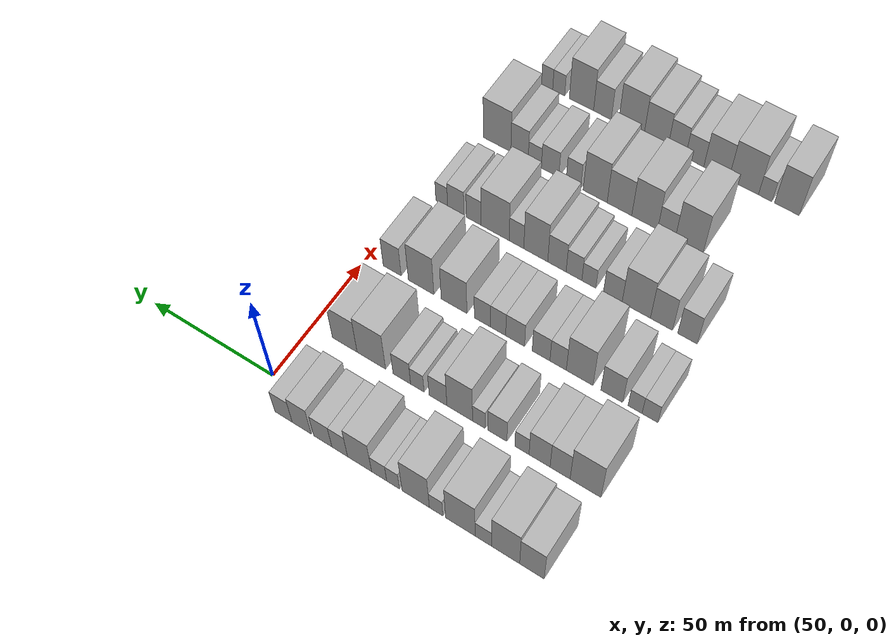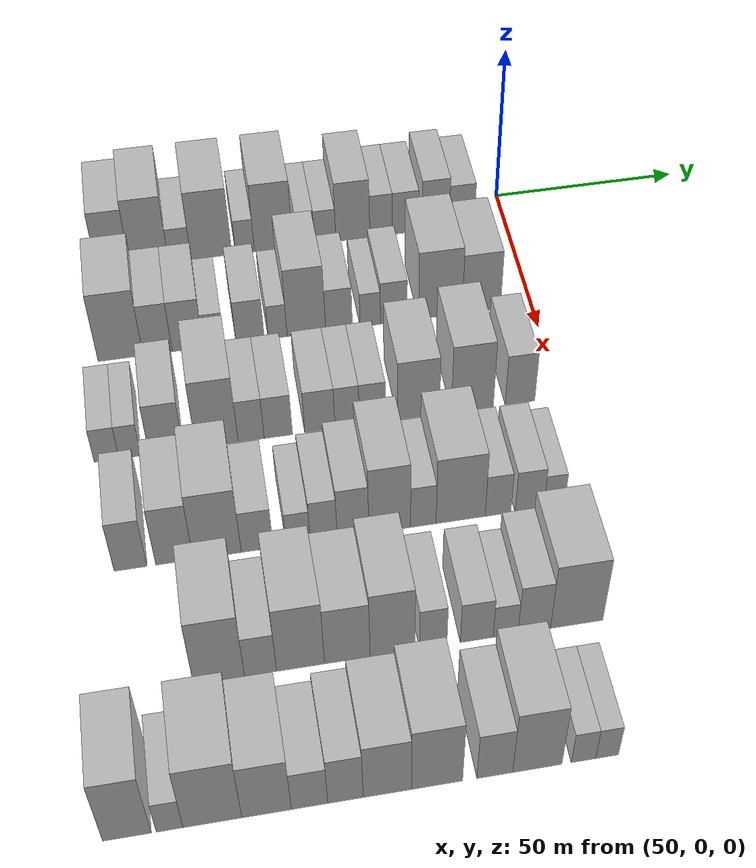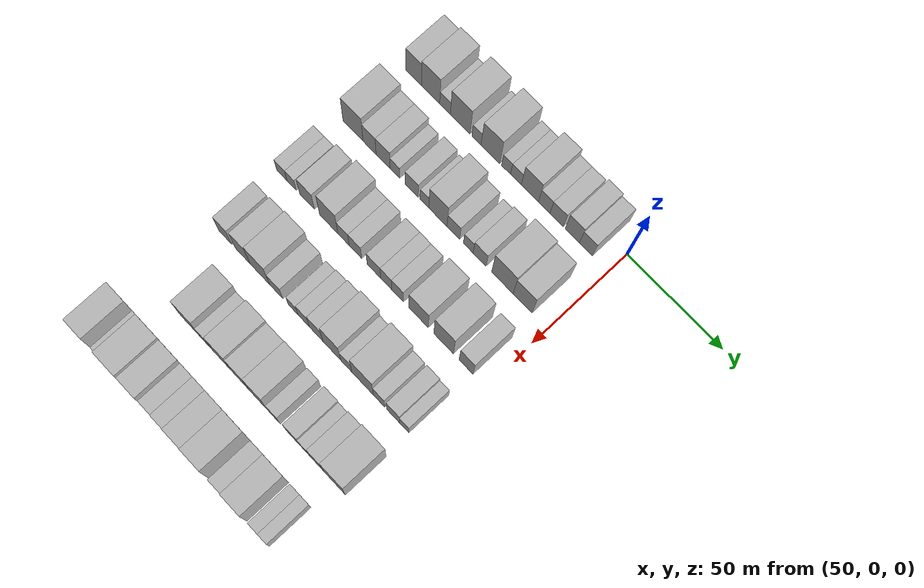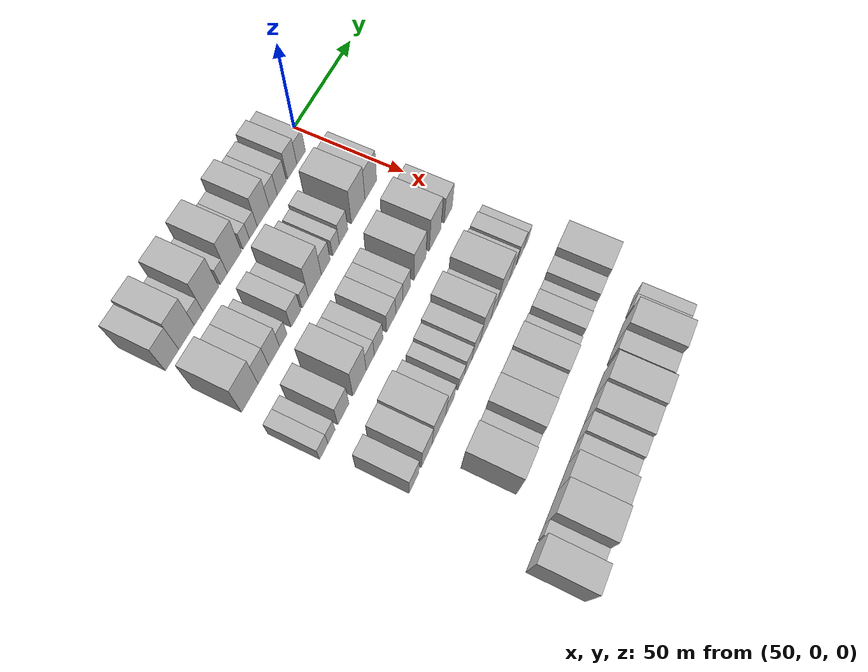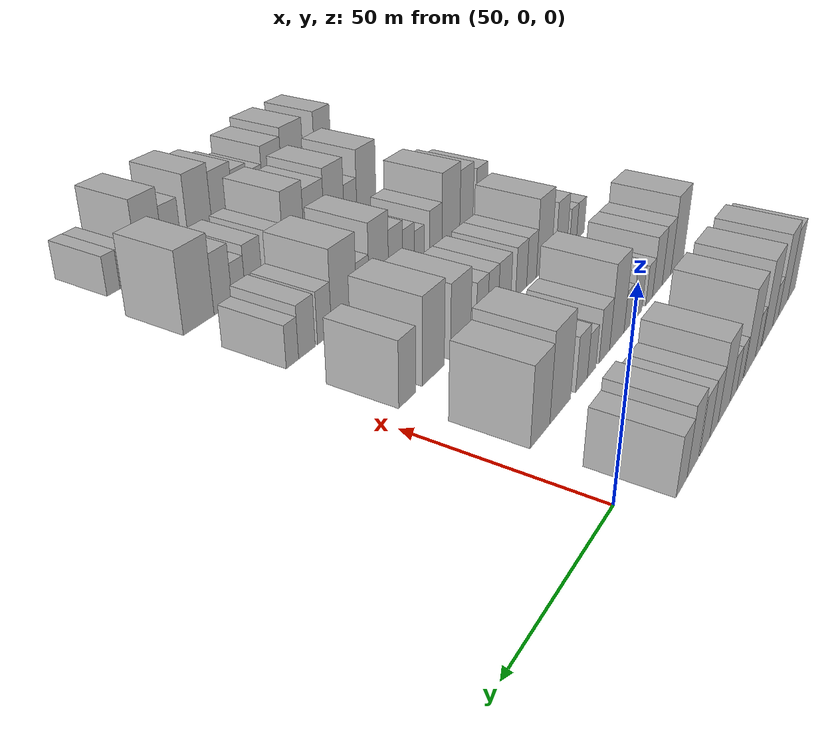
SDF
<sdf version="1.6">
 <world name="default">
  <model name="building_49">
   <static>1</static>
   <pose>50.0000 -106.6758 0 0.000000 0.000000 0.000000</pose>
   <link name="link">
    <pose>0 0 10.50 0 0 0</pose>
    <collision name="collision"><geometry><box><size>20.0000 8.8362 21.0000</size></box></geometry></collision>
    <visual name="visual">
     <cast_shadows>0</cast_shadows>
     <geometry><box><size>20.0000 8.8362 21.0000</size></box></geometry>
     <material>
      <script>
       <uri>model://HANNAS_wall/materials/scripts</uri>
       <uri>model://HANNAS_wall/materials/textures</uri>
       <name>vrc/HANNAS_wall</name>
      </script>
     </material>
    </visual>
   </link>
  </model>
  <model name="building_50">
   <static>1</static>
   <pose>50.0000 -97.1224 0 0.000000 0.000000 0.000000</pose>
   <link name="link">
    <pose>0 0 12.00 0 0 0</pose>
    <collision name="collision"><geometry><box><size>20.0000 10.2706 24.0000</size></box></geometry></collision>
    <visual name="visual">
     <cast_shadows>0</cast_shadows>
     <geometry><box><size>20.0000 10.2706 24.0000</size></box></geometry>
     <material>
      <script>
       <uri>model://HANNAS_wall/materials/scripts</uri>
       <uri>model://HANNAS_wall/materials/textures</uri>
       <name>vrc/HANNAS_wall</name>
      </script>
     </material>
    </visual>
   </link>
  </model>
  <model name="building_51">
   <static>1</static>
   <pose>50.0000 -88.9903 0 0.000000 0.000000 0.000000</pose>
   <link name="link">
    <pose>0 0 6.00 0 0 0</pose>
    <collision name="collision"><geometry><box><size>20.0000 5.9936 12.0000</size></box></geometry></collision>
    <visual name="visual">
     <cast_shadows>0</cast_shadows>
     <geometry><box><size>20.0000 5.9936 12.0000</size></box></geometry>
     <material>
      <script>
       <uri>model://HANNAS_wall/materials/scripts</uri>
       <uri>model://HANNAS_wall/materials/textures</uri>
       <name>vrc/HANNAS_wall</name>
      </script>
     </material>
    </visual>
   </link>
  </model>
  <model name="building_52">
   <static>1</static>
   <pose>50.0000 -80.4888 0 0.000000 0.000000 0.000000</pose>
   <link name="link">
    <pose>0 0 12.00 0 0 0</pose>
    <collision name="collision"><geometry><box><size>20.0000 11.0094 24.0000</size></box></geometry></collision>
    <visual name="visual">
     <cast_shadows>0</cast_shadows>
     <geometry><box><size>20.0000 11.0094 24.0000</size></box></geometry>
     <material>
      <script>
       <uri>model://HANNAS_wall/materials/scripts</uri>
       <uri>model://HANNAS_wall/materials/textures</uri>
       <name>vrc/HANNAS_wall</name>
      </script>
     </material>
    </visual>
   </link>
  </model>
  <model name="building_53">
   <static>1</static>
   <pose>50.0000 -71.4390 0 0.000000 0.000000 0.000000</pose>
   <link name="link">
    <pose>0 0 6.00 0 0 0</pose>
    <collision name="collision"><geometry><box><size>20.0000 5.0902 12.0000</size></box></geometry></collision>
    <visual name="visual">
     <cast_shadows>0</cast_shadows>
     <geometry><box><size>20.0000 5.0902 12.0000</size></box></geometry>
     <material>
      <script>
       <uri>model://HANNAS_wall/materials/scripts</uri>
       <uri>model://HANNAS_wall/materials/textures</uri>
       <name>vrc/HANNAS_wall</name>
      </script>
     </material>
    </visual>
   </link>
  </model>
  <model name="building_54">
   <static>1</static>
   <pose>50.0000 -63.7109 0 0.000000 0.000000 0.000000</pose>
   <link name="link">
    <pose>0 0 12.00 0 0 0</pose>
    <collision name="collision"><geometry><box><size>20.0000 10.3659 24.0000</size></box></geometry></collision>
    <visual name="visual">
     <cast_shadows>0</cast_shadows>
     <geometry><box><size>20.0000 10.3659 24.0000</size></box></geometry>
     <material>
      <script>
       <uri>model://HANNAS_wall/materials/scripts</uri>
       <uri>model://HANNAS_wall/materials/textures</uri>
       <name>vrc/HANNAS_wall</name>
      </script>
     </material>
    </visual>
   </link>
  </model>
  <model name="building_55">
   <static>1</static>
   <pose>50.0000 -55.0827 0 0.000000 0.000000 0.000000</pose>
   <link name="link">
    <pose>0 0 6.00 0 0 0</pose>
    <collision name="collision"><geometry><box><size>20.0000 4.8906 12.0000</size></box></geometry></collision>
    <visual name="visual">
     <cast_shadows>0</cast_shadows>
     <geometry><box><size>20.0000 4.8906 12.0000</size></box></geometry>
     <material>
      <script>
       <uri>model://HANNAS_wall/materials/scripts</uri>
       <uri>model://HANNAS_wall/materials/textures</uri>
       <name>vrc/HANNAS_wall</name>
      </script>
     </material>
    </visual>
   </link>
  </model>
  <model name="building_56">
   <static>1</static>
   <pose>50.0000 -49.7061 0 0.000000 0.000000 0.000000</pose>
   <link name="link">
    <pose>0 0 6.00 0 0 0</pose>
    <collision name="collision"><geometry><box><size>20.0000 5.8625 12.0000</size></box></geometry></collision>
    <visual name="visual">
     <cast_shadows>0</cast_shadows>
     <geometry><box><size>20.0000 5.8625 12.0000</size></box></geometry>
     <material>
      <script>
       <uri>model://HANNAS_wall/materials/scripts</uri>
       <uri>model://HANNAS_wall/materials/textures</uri>
       <name>vrc/HANNAS_wall</name>
      </script>
     </material>
    </visual>
   </link>
  </model>
  <model name="building_57">
   <static>1</static>
   <pose>50.0000 -42.0922 0 0.000000 0.000000 0.000000</pose>
   <link name="link">
    <pose>0 0 10.50 0 0 0</pose>
    <collision name="collision"><geometry><box><size>20.0000 9.3654 21.0000</size></box></geometry></collision>
    <visual name="visual">
     <cast_shadows>0</cast_shadows>
     <geometry><box><size>20.0000 9.3654 21.0000</size></box></geometry>
     <material>
      <script>
       <uri>model://HANNAS_wall/materials/scripts</uri>
       <uri>model://HANNAS_wall/materials/textures</uri>
       <name>vrc/HANNAS_wall</name>
      </script>
     </material>
    </visual>
   </link>
  </model>
  <model name="building_58">
   <static>1</static>
   <pose>50.0000 -34.3028 0 0.000000 0.000000 0.000000</pose>
   <link name="link">
    <pose>0 0 7.50 0 0 0</pose>
    <collision name="collision"><geometry><box><size>20.0000 6.2133 15.0000</size></box></geometry></collision>
    <visual name="visual">
     <cast_shadows>0</cast_shadows>
     <geometry><box><size>20.0000 6.2133 15.0000</size></box></geometry>
     <material>
      <script>
       <uri>model://HANNAS_wall/materials/scripts</uri>
       <uri>model://HANNAS_wall/materials/textures</uri>
       <name>vrc/HANNAS_wall</name>
      </script>
     </material>
    </visual>
   </link>
  </model>
  <model name="building_59">
   <static>1</static>
   <pose>50.0000 -27.5855 0 0.000000 0.000000 0.000000</pose>
   <link name="link">
    <pose>0 0 7.50 0 0 0</pose>
    <collision name="collision"><geometry><box><size>20.0000 7.2214 15.0000</size></box></geometry></collision>
    <visual name="visual">
     <cast_shadows>0</cast_shadows>
     <geometry><box><size>20.0000 7.2214 15.0000</size></box></geometry>
     <material>
      <script>
       <uri>model://HANNAS_wall/materials/scripts</uri>
       <uri>model://HANNAS_wall/materials/textures</uri>
       <name>vrc/HANNAS_wall</name>
      </script>
     </material>
    </visual>
   </link>
  </model>
  <model name="building_60">
   <static>1</static>
   <pose>50.0000 -19.1805 0 0.000000 0.000000 0.000000</pose>
   <link name="link">
    <pose>0 0 9.00 0 0 0</pose>
    <collision name="collision"><geometry><box><size>20.0000 7.5884 18.0000</size></box></geometry></collision>
    <visual name="visual">
     <cast_shadows>0</cast_shadows>
     <geometry><box><size>20.0000 7.5884 18.0000</size></box></geometry>
     <material>
      <script>
       <uri>model://HANNAS_wall/materials/scripts</uri>
       <uri>model://HANNAS_wall/materials/textures</uri>
       <name>vrc/HANNAS_wall</name>
      </script>
     </material>
    </visual>
   </link>
  </model>
  <model name="building_61">
   <static>1</static>
   <pose>50.0000 -11.8799 0 0.000000 0.000000 0.000000</pose>
   <link name="link">
    <pose>0 0 7.50 0 0 0</pose>
    <collision name="collision"><geometry><box><size>20.0000 7.0128 15.0000</size></box></geometry></collision>
    <visual name="visual">
     <cast_shadows>0</cast_shadows>
     <geometry><box><size>20.0000 7.0128 15.0000</size></box></geometry>
     <material>
      <script>
       <uri>model://HANNAS_wall/materials/scripts</uri>
       <uri>model://HANNAS_wall/materials/textures</uri>
       <name>vrc/HANNAS_wall</name>
      </script>
     </material>
    </visual>
   </link>
  </model>
  <model name="building_170">
   <static>1</static>
   <pose>82.0000 -106.6949 0 0.000000 0.000000 0.000000</pose>
   <link name="link">
    <pose>0 0 12.00 0 0 0</pose>
    <collision name="collision"><geometry><box><size>20.0000 11.3223 24.0000</size></box></geometry></collision>
    <visual name="visual">
     <cast_shadows>0</cast_shadows>
     <geometry><box><size>20.0000 11.3223 24.0000</size></box></geometry>
     <material>
      <script>
       <uri>model://HANNAS_wall/materials/scripts</uri>
       <uri>model://HANNAS_wall/materials/textures</uri>
       <name>vrc/HANNAS_wall</name>
      </script>
     </material>
    </visual>
   </link>
  </model>
  <model name="building_171">
   <static>1</static>
   <pose>82.0000 -97.3209 0 0.000000 0.000000 0.000000</pose>
   <link name="link">
    <pose>0 0 9.00 0 0 0</pose>
    <collision name="collision"><geometry><box><size>20.0000 7.4257 18.0000</size></box></geometry></collision>
    <visual name="visual">
     <cast_shadows>0</cast_shadows>
     <geometry><box><size>20.0000 7.4257 18.0000</size></box></geometry>
     <material>
      <script>
       <uri>model://HANNAS_wall/materials/scripts</uri>
       <uri>model://HANNAS_wall/materials/textures</uri>
       <name>vrc/HANNAS_wall</name>
      </script>
     </material>
    </visual>
   </link>
  </model>
  <model name="building_172">
   <static>1</static>
   <pose>82.0000 -89.6643 0 0.000000 0.000000 0.000000</pose>
   <link name="link">
    <pose>0 0 9.00 0 0 0</pose>
    <collision name="collision"><geometry><box><size>20.0000 7.8875 18.0000</size></box></geometry></collision>
    <visual name="visual">
     <cast_shadows>0</cast_shadows>
     <geometry><box><size>20.0000 7.8875 18.0000</size></box></geometry>
     <material>
      <script>
       <uri>model://HANNAS_wall/materials/scripts</uri>
       <uri>model://HANNAS_wall/materials/textures</uri>
       <name>vrc/HANNAS_wall</name>
      </script>
     </material>
    </visual>
   </link>
  </model>
  <model name="building_173">
   <static>1</static>
   <pose>82.0000 -83.0372 0 0.000000 0.000000 0.000000</pose>
   <link name="link">
    <pose>0 0 6.00 0 0 0</pose>
    <collision name="collision"><geometry><box><size>20.0000 5.3668 12.0000</size></box></geometry></collision>
    <visual name="visual">
     <cast_shadows>0</cast_shadows>
     <geometry><box><size>20.0000 5.3668 12.0000</size></box></geometry>
     <material>
      <script>
       <uri>model://HANNAS_wall/materials/scripts</uri>
       <uri>model://HANNAS_wall/materials/textures</uri>
       <name>vrc/HANNAS_wall</name>
      </script>
     </material>
    </visual>
   </link>
  </model>
  <model name="building_174">
   <static>1</static>
   <pose>82.0000 -73.7047 0 0.000000 0.000000 0.000000</pose>
   <link name="link">
    <pose>0 0 7.50 0 0 0</pose>
    <collision name="collision"><geometry><box><size>20.0000 7.2982 15.0000</size></box></geometry></collision>
    <visual name="visual">
     <cast_shadows>0</cast_shadows>
     <geometry><box><size>20.0000 7.2982 15.0000</size></box></geometry>
     <material>
      <script>
       <uri>model://HANNAS_wall/materials/scripts</uri>
       <uri>model://HANNAS_wall/materials/textures</uri>
       <name>vrc/HANNAS_wall</name>
      </script>
     </material>
    </visual>
   </link>
  </model>
  <model name="building_175">
   <static>1</static>
   <pose>82.0000 -66.6245 0 0.000000 0.000000 0.000000</pose>
   <link name="link">
    <pose>0 0 6.00 0 0 0</pose>
    <collision name="collision"><geometry><box><size>20.0000 4.8620 12.0000</size></box></geometry></collision>
    <visual name="visual">
     <cast_shadows>0</cast_shadows>
     <geometry><box><size>20.0000 4.8620 12.0000</size></box></geometry>
     <material>
      <script>
       <uri>model://HANNAS_wall/materials/scripts</uri>
       <uri>model://HANNAS_wall/materials/textures</uri>
       <name>vrc/HANNAS_wall</name>
      </script>
     </material>
    </visual>
   </link>
  </model>
  <model name="building_176">
   <static>1</static>
   <pose>82.0000 -59.1993 0 0.000000 0.000000 0.000000</pose>
   <link name="link">
    <pose>0 0 12.00 0 0 0</pose>
    <collision name="collision"><geometry><box><size>20.0000 9.9884 24.0000</size></box></geometry></collision>
    <visual name="visual">
     <cast_shadows>0</cast_shadows>
     <geometry><box><size>20.0000 9.9884 24.0000</size></box></geometry>
     <material>
      <script>
       <uri>model://HANNAS_wall/materials/scripts</uri>
       <uri>model://HANNAS_wall/materials/textures</uri>
       <name>vrc/HANNAS_wall</name>
      </script>
     </material>
    </visual>
   </link>
  </model>
  <model name="building_177">
   <static>1</static>
   <pose>82.0000 -50.7267 0 0.000000 0.000000 0.000000</pose>
   <link name="link">
    <pose>0 0 7.50 0 0 0</pose>
    <collision name="collision"><geometry><box><size>20.0000 6.9568 15.0000</size></box></geometry></collision>
    <visual name="visual">
     <cast_shadows>0</cast_shadows>
     <geometry><box><size>20.0000 6.9568 15.0000</size></box></geometry>
     <material>
      <script>
       <uri>model://HANNAS_wall/materials/scripts</uri>
       <uri>model://HANNAS_wall/materials/textures</uri>
       <name>vrc/HANNAS_wall</name>
      </script>
     </material>
    </visual>
   </link>
  </model>
  <model name="building_178">
   <static>1</static>
   <pose>82.0000 -42.5700 0 0.000000 0.000000 0.000000</pose>
   <link name="link">
    <pose>0 0 6.00 0 0 0</pose>
    <collision name="collision"><geometry><box><size>20.0000 5.3566 12.0000</size></box></geometry></collision>
    <visual name="visual">
     <cast_shadows>0</cast_shadows>
     <geometry><box><size>20.0000 5.3566 12.0000</size></box></geometry>
     <material>
      <script>
       <uri>model://HANNAS_wall/materials/scripts</uri>
       <uri>model://HANNAS_wall/materials/textures</uri>
       <name>vrc/HANNAS_wall</name>
      </script>
     </material>
    </visual>
   </link>
  </model>
  <model name="building_179">
   <static>1</static>
   <pose>82.0000 -36.3921 0 0.000000 0.000000 0.000000</pose>
   <link name="link">
    <pose>0 0 7.50 0 0 0</pose>
    <collision name="collision"><geometry><box><size>20.0000 6.9991 15.0000</size></box></geometry></collision>
    <visual name="visual">
     <cast_shadows>0</cast_shadows>
     <geometry><box><size>20.0000 6.9991 15.0000</size></box></geometry>
     <material>
      <script>
       <uri>model://HANNAS_wall/materials/scripts</uri>
       <uri>model://HANNAS_wall/materials/textures</uri>
       <name>vrc/HANNAS_wall</name>
      </script>
     </material>
    </visual>
   </link>
  </model>
  <model name="building_180">
   <static>1</static>
   <pose>82.0000 -24.1122 0 0.000000 0.000000 0.000000</pose>
   <link name="link">
    <pose>0 0 12.00 0 0 0</pose>
    <collision name="collision"><geometry><box><size>20.0000 11.5607 24.0000</size></box></geometry></collision>
    <visual name="visual">
     <cast_shadows>0</cast_shadows>
     <geometry><box><size>20.0000 11.5607 24.0000</size></box></geometry>
     <material>
      <script>
       <uri>model://HANNAS_wall/materials/scripts</uri>
       <uri>model://HANNAS_wall/materials/textures</uri>
       <name>vrc/HANNAS_wall</name>
      </script>
     </material>
    </visual>
   </link>
  </model>
  <model name="building_181">
   <static>1</static>
   <pose>82.0000 -13.2742 0 0.000000 0.000000 0.000000</pose>
   <link name="link">
    <pose>0 0 10.50 0 0 0</pose>
    <collision name="collision"><geometry><box><size>20.0000 10.1153 21.0000</size></box></geometry></collision>
    <visual name="visual">
     <cast_shadows>0</cast_shadows>
     <geometry><box><size>20.0000 10.1153 21.0000</size></box></geometry>
     <material>
      <script>
       <uri>model://HANNAS_wall/materials/scripts</uri>
       <uri>model://HANNAS_wall/materials/textures</uri>
       <name>vrc/HANNAS_wall</name>
      </script>
     </material>
    </visual>
   </link>
  </model>
  <model name="building_294">
   <static>1</static>
   <pose>114.0000 -111.9720 0 0.000000 0.000000 0.000000</pose>
   <link name="link">
    <pose>0 0 6.00 0 0 0</pose>
    <collision name="collision"><geometry><box><size>20.0000 5.9072 12.0000</size></box></geometry></collision>
    <visual name="visual">
     <cast_shadows>0</cast_shadows>
     <geometry><box><size>20.0000 5.9072 12.0000</size></box></geometry>
     <material>
      <script>
       <uri>model://HANNAS_wall/materials/scripts</uri>
       <uri>model://HANNAS_wall/materials/textures</uri>
       <name>vrc/HANNAS_wall</name>
      </script>
     </material>
    </visual>
   </link>
  </model>
  <model name="building_295">
   <static>1</static>
   <pose>114.0000 -106.4032 0 0.000000 0.000000 0.000000</pose>
   <link name="link">
    <pose>0 0 6.00 0 0 0</pose>
    <collision name="collision"><geometry><box><size>20.0000 5.2304 12.0000</size></box></geometry></collision>
    <visual name="visual">
     <cast_shadows>0</cast_shadows>
     <geometry><box><size>20.0000 5.2304 12.0000</size></box></geometry>
     <material>
      <script>
       <uri>model://HANNAS_wall/materials/scripts</uri>
       <uri>model://HANNAS_wall/materials/textures</uri>
       <name>vrc/HANNAS_wall</name>
      </script>
     </material>
    </visual>
   </link>
  </model>
  <model name="building_296">
   <static>1</static>
   <pose>114.0000 -97.6557 0 0.000000 0.000000 0.000000</pose>
   <link name="link">
    <pose>0 0 9.00 0 0 0</pose>
    <collision name="collision"><geometry><box><size>20.0000 8.2647 18.0000</size></box></geometry></collision>
    <visual name="visual">
     <cast_shadows>0</cast_shadows>
     <geometry><box><size>20.0000 8.2647 18.0000</size></box></geometry>
     <material>
      <script>
       <uri>model://HANNAS_wall/materials/scripts</uri>
       <uri>model://HANNAS_wall/materials/textures</uri>
       <name>vrc/HANNAS_wall</name>
      </script>
     </material>
    </visual>
   </link>
  </model>
  <model name="building_297">
   <static>1</static>
   <pose>114.0000 -85.3993 0 0.000000 0.000000 0.000000</pose>
   <link name="link">
    <pose>0 0 12.00 0 0 0</pose>
    <collision name="collision"><geometry><box><size>20.0000 10.2481 24.0000</size></box></geometry></collision>
    <visual name="visual">
     <cast_shadows>0</cast_shadows>
     <geometry><box><size>20.0000 10.2481 24.0000</size></box></geometry>
     <material>
      <script>
       <uri>model://HANNAS_wall/materials/scripts</uri>
       <uri>model://HANNAS_wall/materials/textures</uri>
       <name>vrc/HANNAS_wall</name>
      </script>
     </material>
    </visual>
   </link>
  </model>
  <model name="building_298">
   <static>1</static>
   <pose>114.0000 -77.1096 0 0.000000 0.000000 0.000000</pose>
   <link name="link">
    <pose>0 0 7.50 0 0 0</pose>
    <collision name="collision"><geometry><box><size>20.0000 6.3313 15.0000</size></box></geometry></collision>
    <visual name="visual">
     <cast_shadows>0</cast_shadows>
     <geometry><box><size>20.0000 6.3313 15.0000</size></box></geometry>
     <material>
      <script>
       <uri>model://HANNAS_wall/materials/scripts</uri>
       <uri>model://HANNAS_wall/materials/textures</uri>
       <name>vrc/HANNAS_wall</name>
      </script>
     </material>
    </visual>
   </link>
  </model>
  <model name="building_299">
   <static>1</static>
   <pose>114.0000 -70.4872 0 0.000000 0.000000 0.000000</pose>
   <link name="link">
    <pose>0 0 7.50 0 0 0</pose>
    <collision name="collision"><geometry><box><size>20.0000 6.9136 15.0000</size></box></geometry></collision>
    <visual name="visual">
     <cast_shadows>0</cast_shadows>
     <geometry><box><size>20.0000 6.9136 15.0000</size></box></geometry>
     <material>
      <script>
       <uri>model://HANNAS_wall/materials/scripts</uri>
       <uri>model://HANNAS_wall/materials/textures</uri>
       <name>vrc/HANNAS_wall</name>
      </script>
     </material>
    </visual>
   </link>
  </model>
  <model name="building_300">
   <static>1</static>
   <pose>114.0000 -60.3048 0 0.000000 0.000000 0.000000</pose>
   <link name="link">
    <pose>0 0 7.50 0 0 0</pose>
    <collision name="collision"><geometry><box><size>20.0000 7.4512 15.0000</size></box></geometry></collision>
    <visual name="visual">
     <cast_shadows>0</cast_shadows>
     <geometry><box><size>20.0000 7.4512 15.0000</size></box></geometry>
     <material>
      <script>
       <uri>model://HANNAS_wall/materials/scripts</uri>
       <uri>model://HANNAS_wall/materials/textures</uri>
       <name>vrc/HANNAS_wall</name>
      </script>
     </material>
    </visual>
   </link>
  </model>
  <model name="building_301">
   <static>1</static>
   <pose>114.0000 -53.5393 0 0.000000 0.000000 0.000000</pose>
   <link name="link">
    <pose>0 0 7.50 0 0 0</pose>
    <collision name="collision"><geometry><box><size>20.0000 6.0798 15.0000</size></box></geometry></collision>
    <visual name="visual">
     <cast_shadows>0</cast_shadows>
     <geometry><box><size>20.0000 6.0798 15.0000</size></box></geometry>
     <material>
      <script>
       <uri>model://HANNAS_wall/materials/scripts</uri>
       <uri>model://HANNAS_wall/materials/textures</uri>
       <name>vrc/HANNAS_wall</name>
      </script>
     </material>
    </visual>
   </link>
  </model>
  <model name="building_302">
   <static>1</static>
   <pose>114.0000 -47.2823 0 0.000000 0.000000 0.000000</pose>
   <link name="link">
    <pose>0 0 7.50 0 0 0</pose>
    <collision name="collision"><geometry><box><size>20.0000 6.4341 15.0000</size></box></geometry></collision>
    <visual name="visual">
     <cast_shadows>0</cast_shadows>
     <geometry><box><size>20.0000 6.4341 15.0000</size></box></geometry>
     <material>
      <script>
       <uri>model://HANNAS_wall/materials/scripts</uri>
       <uri>model://HANNAS_wall/materials/textures</uri>
       <name>vrc/HANNAS_wall</name>
      </script>
     </material>
    </visual>
   </link>
  </model>
  <model name="building_303">
   <static>1</static>
   <pose>114.0000 -35.8407 0 0.000000 0.000000 0.000000</pose>
   <link name="link">
    <pose>0 0 10.50 0 0 0</pose>
    <collision name="collision"><geometry><box><size>20.0000 10.4492 21.0000</size></box></geometry></collision>
    <visual name="visual">
     <cast_shadows>0</cast_shadows>
     <geometry><box><size>20.0000 10.4492 21.0000</size></box></geometry>
     <material>
      <script>
       <uri>model://HANNAS_wall/materials/scripts</uri>
       <uri>model://HANNAS_wall/materials/textures</uri>
       <name>vrc/HANNAS_wall</name>
      </script>
     </material>
    </visual>
   </link>
  </model>
  <model name="building_304">
   <static>1</static>
   <pose>114.0000 -22.3549 0 0.000000 0.000000 0.000000</pose>
   <link name="link">
    <pose>0 0 12.00 0 0 0</pose>
    <collision name="collision"><geometry><box><size>20.0000 10.5223 24.0000</size></box></geometry></collision>
    <visual name="visual">
     <cast_shadows>0</cast_shadows>
     <geometry><box><size>20.0000 10.5223 24.0000</size></box></geometry>
     <material>
      <script>
       <uri>model://HANNAS_wall/materials/scripts</uri>
       <uri>model://HANNAS_wall/materials/textures</uri>
       <name>vrc/HANNAS_wall</name>
      </script>
     </material>
    </visual>
   </link>
  </model>
  <model name="building_305">
   <static>1</static>
   <pose>114.0000 -10.3544 0 0.000000 0.000000 0.000000</pose>
   <link name="link">
    <pose>0 0 9.00 0 0 0</pose>
    <collision name="collision"><geometry><box><size>20.0000 7.4786 18.0000</size></box></geometry></collision>
    <visual name="visual">
     <cast_shadows>0</cast_shadows>
     <geometry><box><size>20.0000 7.4786 18.0000</size></box></geometry>
     <material>
      <script>
       <uri>model://HANNAS_wall/materials/scripts</uri>
       <uri>model://HANNAS_wall/materials/textures</uri>
       <name>vrc/HANNAS_wall</name>
      </script>
     </material>
    </visual>
   </link>
  </model>
  <model name="building_410">
   <static>1</static>
   <pose>146.0000 -108.2855 0 0.000000 0.000000 0.000000</pose>
   <link name="link">
    <pose>0 0 9.00 0 0 0</pose>
    <collision name="collision"><geometry><box><size>20.0000 7.4325 18.0000</size></box></geometry></collision>
    <visual name="visual">
     <cast_shadows>0</cast_shadows>
     <geometry><box><size>20.0000 7.4325 18.0000</size></box></geometry>
     <material>
      <script>
       <uri>model://HANNAS_wall/materials/scripts</uri>
       <uri>model://HANNAS_wall/materials/textures</uri>
       <name>vrc/HANNAS_wall</name>
      </script>
     </material>
    </visual>
   </link>
  </model>
  <model name="building_411">
   <static>1</static>
   <pose>146.0000 -98.3204 0 0.000000 0.000000 0.000000</pose>
   <link name="link">
    <pose>0 0 10.50 0 0 0</pose>
    <collision name="collision"><geometry><box><size>20.0000 8.4978 21.0000</size></box></geometry></collision>
    <visual name="visual">
     <cast_shadows>0</cast_shadows>
     <geometry><box><size>20.0000 8.4978 21.0000</size></box></geometry>
     <material>
      <script>
       <uri>model://HANNAS_wall/materials/scripts</uri>
       <uri>model://HANNAS_wall/materials/textures</uri>
       <name>vrc/HANNAS_wall</name>
      </script>
     </material>
    </visual>
   </link>
  </model>
  <model name="building_412">
   <static>1</static>
   <pose>146.0000 -88.5543 0 0.000000 0.000000 0.000000</pose>
   <link name="link">
    <pose>0 0 12.00 0 0 0</pose>
    <collision name="collision"><geometry><box><size>20.0000 11.0344 24.0000</size></box></geometry></collision>
    <visual name="visual">
     <cast_shadows>0</cast_shadows>
     <geometry><box><size>20.0000 11.0344 24.0000</size></box></geometry>
     <material>
      <script>
       <uri>model://HANNAS_wall/materials/scripts</uri>
       <uri>model://HANNAS_wall/materials/textures</uri>
       <name>vrc/HANNAS_wall</name>
      </script>
     </material>
    </visual>
   </link>
  </model>
  <model name="building_413">
   <static>1</static>
   <pose>146.0000 -79.3712 0 0.000000 0.000000 0.000000</pose>
   <link name="link">
    <pose>0 0 7.50 0 0 0</pose>
    <collision name="collision"><geometry><box><size>20.0000 7.3317 15.0000</size></box></geometry></collision>
    <visual name="visual">
     <cast_shadows>0</cast_shadows>
     <geometry><box><size>20.0000 7.3317 15.0000</size></box></geometry>
     <material>
      <script>
       <uri>model://HANNAS_wall/materials/scripts</uri>
       <uri>model://HANNAS_wall/materials/textures</uri>
       <name>vrc/HANNAS_wall</name>
      </script>
     </material>
    </visual>
   </link>
  </model>
  <model name="building_414">
   <static>1</static>
   <pose>146.0000 -69.9144 0 0.000000 0.000000 0.000000</pose>
   <link name="link">
    <pose>0 0 6.00 0 0 0</pose>
    <collision name="collision"><geometry><box><size>20.0000 5.5820 12.0000</size></box></geometry></collision>
    <visual name="visual">
     <cast_shadows>0</cast_shadows>
     <geometry><box><size>20.0000 5.5820 12.0000</size></box></geometry>
     <material>
      <script>
       <uri>model://HANNAS_wall/materials/scripts</uri>
       <uri>model://HANNAS_wall/materials/textures</uri>
       <name>vrc/HANNAS_wall</name>
      </script>
     </material>
    </visual>
   </link>
  </model>
  <model name="building_415">
   <static>1</static>
   <pose>146.0000 -63.9844 0 0.000000 0.000000 0.000000</pose>
   <link name="link">
    <pose>0 0 7.50 0 0 0</pose>
    <collision name="collision"><geometry><box><size>20.0000 6.2781 15.0000</size></box></geometry></collision>
    <visual name="visual">
     <cast_shadows>0</cast_shadows>
     <geometry><box><size>20.0000 6.2781 15.0000</size></box></geometry>
     <material>
      <script>
       <uri>model://HANNAS_wall/materials/scripts</uri>
       <uri>model://HANNAS_wall/materials/textures</uri>
       <name>vrc/HANNAS_wall</name>
      </script>
     </material>
    </visual>
   </link>
  </model>
  <model name="building_416">
   <static>1</static>
   <pose>146.0000 -57.1418 0 0.000000 0.000000 0.000000</pose>
   <link name="link">
    <pose>0 0 9.00 0 0 0</pose>
    <collision name="collision"><geometry><box><size>20.0000 7.4070 18.0000</size></box></geometry></collision>
    <visual name="visual">
     <cast_shadows>0</cast_shadows>
     <geometry><box><size>20.0000 7.4070 18.0000</size></box></geometry>
     <material>
      <script>
       <uri>model://HANNAS_wall/materials/scripts</uri>
       <uri>model://HANNAS_wall/materials/textures</uri>
       <name>vrc/HANNAS_wall</name>
      </script>
     </material>
    </visual>
   </link>
  </model>
  <model name="building_417">
   <static>1</static>
   <pose>146.0000 -48.5632 0 0.000000 0.000000 0.000000</pose>
   <link name="link">
    <pose>0 0 12.00 0 0 0</pose>
    <collision name="collision"><geometry><box><size>20.0000 9.7503 24.0000</size></box></geometry></collision>
    <visual name="visual">
     <cast_shadows>0</cast_shadows>
     <geometry><box><size>20.0000 9.7503 24.0000</size></box></geometry>
     <material>
      <script>
       <uri>model://HANNAS_wall/materials/scripts</uri>
       <uri>model://HANNAS_wall/materials/textures</uri>
       <name>vrc/HANNAS_wall</name>
      </script>
     </material>
    </visual>
   </link>
  </model>
  <model name="building_418">
   <static>1</static>
   <pose>146.0000 -40.6836 0 0.000000 0.000000 0.000000</pose>
   <link name="link">
    <pose>0 0 7.50 0 0 0</pose>
    <collision name="collision"><geometry><box><size>20.0000 6.0090 15.0000</size></box></geometry></collision>
    <visual name="visual">
     <cast_shadows>0</cast_shadows>
     <geometry><box><size>20.0000 6.0090 15.0000</size></box></geometry>
     <material>
      <script>
       <uri>model://HANNAS_wall/materials/scripts</uri>
       <uri>model://HANNAS_wall/materials/textures</uri>
       <name>vrc/HANNAS_wall</name>
      </script>
     </material>
    </visual>
   </link>
  </model>
  <model name="building_419">
   <static>1</static>
   <pose>146.0000 -31.8502 0 0.000000 0.000000 0.000000</pose>
   <link name="link">
    <pose>0 0 12.00 0 0 0</pose>
    <collision name="collision"><geometry><box><size>20.0000 11.6579 24.0000</size></box></geometry></collision>
    <visual name="visual">
     <cast_shadows>0</cast_shadows>
     <geometry><box><size>20.0000 11.6579 24.0000</size></box></geometry>
     <material>
      <script>
       <uri>model://HANNAS_wall/materials/scripts</uri>
       <uri>model://HANNAS_wall/materials/textures</uri>
       <name>vrc/HANNAS_wall</name>
      </script>
     </material>
    </visual>
   </link>
  </model>
  <model name="building_420">
   <static>1</static>
   <pose>146.0000 -22.9560 0 0.000000 0.000000 0.000000</pose>
   <link name="link">
    <pose>0 0 7.50 0 0 0</pose>
    <collision name="collision"><geometry><box><size>20.0000 6.1304 15.0000</size></box></geometry></collision>
    <visual name="visual">
     <cast_shadows>0</cast_shadows>
     <geometry><box><size>20.0000 6.1304 15.0000</size></box></geometry>
     <material>
      <script>
       <uri>model://HANNAS_wall/materials/scripts</uri>
       <uri>model://HANNAS_wall/materials/textures</uri>
       <name>vrc/HANNAS_wall</name>
      </script>
     </material>
    </visual>
   </link>
  </model>
  <model name="building_421">
   <static>1</static>
   <pose>146.0000 -15.4389 0 0.000000 0.000000 0.000000</pose>
   <link name="link">
    <pose>0 0 7.50 0 0 0</pose>
    <collision name="collision"><geometry><box><size>20.0000 6.9038 15.0000</size></box></geometry></collision>
    <visual name="visual">
     <cast_shadows>0</cast_shadows>
     <geometry><box><size>20.0000 6.9038 15.0000</size></box></geometry>
     <material>
      <script>
       <uri>model://HANNAS_wall/materials/scripts</uri>
       <uri>model://HANNAS_wall/materials/textures</uri>
       <name>vrc/HANNAS_wall</name>
      </script>
     </material>
    </visual>
   </link>
  </model>
  <model name="building_422">
   <static>1</static>
   <pose>146.0000 -9.4893 0 0.000000 0.000000 0.000000</pose>
   <link name="link">
    <pose>0 0 6.00 0 0 0</pose>
    <collision name="collision"><geometry><box><size>20.0000 4.9953 12.0000</size></box></geometry></collision>
    <visual name="visual">
     <cast_shadows>0</cast_shadows>
     <geometry><box><size>20.0000 4.9953 12.0000</size></box></geometry>
     <material>
      <script>
       <uri>model://HANNAS_wall/materials/scripts</uri>
       <uri>model://HANNAS_wall/materials/textures</uri>
       <name>vrc/HANNAS_wall</name>
      </script>
     </material>
    </visual>
   </link>
  </model>
  <model name="building_529">
   <static>1</static>
   <pose>178.0000 -91.4048 0 0.000000 0.000000 0.000000</pose>
   <link name="link">
    <pose>0 0 12.00 0 0 0</pose>
    <collision name="collision"><geometry><box><size>20.0000 11.0029 24.0000</size></box></geometry></collision>
    <visual name="visual">
     <cast_shadows>0</cast_shadows>
     <geometry><box><size>20.0000 11.0029 24.0000</size></box></geometry>
     <material>
      <script>
       <uri>model://HANNAS_wall/materials/scripts</uri>
       <uri>model://HANNAS_wall/materials/textures</uri>
       <name>vrc/HANNAS_wall</name>
      </script>
     </material>
    </visual>
   </link>
  </model>
  <model name="building_530">
   <static>1</static>
   <pose>178.0000 -82.4167 0 0.000000 0.000000 0.000000</pose>
   <link name="link">
    <pose>0 0 7.50 0 0 0</pose>
    <collision name="collision"><geometry><box><size>20.0000 6.9733 15.0000</size></box></geometry></collision>
    <visual name="visual">
     <cast_shadows>0</cast_shadows>
     <geometry><box><size>20.0000 6.9733 15.0000</size></box></geometry>
     <material>
      <script>
       <uri>model://HANNAS_wall/materials/scripts</uri>
       <uri>model://HANNAS_wall/materials/textures</uri>
       <name>vrc/HANNAS_wall</name>
      </script>
     </material>
    </visual>
   </link>
  </model>
  <model name="building_531">
   <static>1</static>
   <pose>178.0000 -73.6978 0 0.000000 0.000000 0.000000</pose>
   <link name="link">
    <pose>0 0 12.00 0 0 0</pose>
    <collision name="collision"><geometry><box><size>20.0000 10.4643 24.0000</size></box></geometry></collision>
    <visual name="visual">
     <cast_shadows>0</cast_shadows>
     <geometry><box><size>20.0000 10.4643 24.0000</size></box></geometry>
     <material>
      <script>
       <uri>model://HANNAS_wall/materials/scripts</uri>
       <uri>model://HANNAS_wall/materials/textures</uri>
       <name>vrc/HANNAS_wall</name>
      </script>
     </material>
    </visual>
   </link>
  </model>
  <model name="building_532">
   <static>1</static>
   <pose>178.0000 -63.4511 0 0.000000 0.000000 0.000000</pose>
   <link name="link">
    <pose>0 0 10.50 0 0 0</pose>
    <collision name="collision"><geometry><box><size>20.0000 10.0291 21.0000</size></box></geometry></collision>
    <visual name="visual">
     <cast_shadows>0</cast_shadows>
     <geometry><box><size>20.0000 10.0291 21.0000</size></box></geometry>
     <material>
      <script>
       <uri>model://HANNAS_wall/materials/scripts</uri>
       <uri>model://HANNAS_wall/materials/textures</uri>
       <name>vrc/HANNAS_wall</name>
      </script>
     </material>
    </visual>
   </link>
  </model>
  <model name="building_533">
   <static>1</static>
   <pose>178.0000 -53.4930 0 0.000000 0.000000 0.000000</pose>
   <link name="link">
    <pose>0 0 12.00 0 0 0</pose>
    <collision name="collision"><geometry><box><size>20.0000 9.8871 24.0000</size></box></geometry></collision>
    <visual name="visual">
     <cast_shadows>0</cast_shadows>
     <geometry><box><size>20.0000 9.8871 24.0000</size></box></geometry>
     <material>
      <script>
       <uri>model://HANNAS_wall/materials/scripts</uri>
       <uri>model://HANNAS_wall/materials/textures</uri>
       <name>vrc/HANNAS_wall</name>
      </script>
     </material>
    </visual>
   </link>
  </model>
  <model name="building_534">
   <static>1</static>
   <pose>178.0000 -44.5005 0 0.000000 0.000000 0.000000</pose>
   <link name="link">
    <pose>0 0 7.50 0 0 0</pose>
    <collision name="collision"><geometry><box><size>20.0000 6.0981 15.0000</size></box></geometry></collision>
    <visual name="visual">
     <cast_shadows>0</cast_shadows>
     <geometry><box><size>20.0000 6.0981 15.0000</size></box></geometry>
     <material>
      <script>
       <uri>model://HANNAS_wall/materials/scripts</uri>
       <uri>model://HANNAS_wall/materials/textures</uri>
       <name>vrc/HANNAS_wall</name>
      </script>
     </material>
    </visual>
   </link>
  </model>
  <model name="building_535">
   <static>1</static>
   <pose>178.0000 -34.7772 0 0.000000 0.000000 0.000000</pose>
   <link name="link">
    <pose>0 0 7.50 0 0 0</pose>
    <collision name="collision"><geometry><box><size>20.0000 7.3485 15.0000</size></box></geometry></collision>
    <visual name="visual">
     <cast_shadows>0</cast_shadows>
     <geometry><box><size>20.0000 7.3485 15.0000</size></box></geometry>
     <material>
      <script>
       <uri>model://HANNAS_wall/materials/scripts</uri>
       <uri>model://HANNAS_wall/materials/textures</uri>
       <name>vrc/HANNAS_wall</name>
      </script>
     </material>
    </visual>
   </link>
  </model>
  <model name="building_536">
   <static>1</static>
   <pose>178.0000 -28.3138 0 0.000000 0.000000 0.000000</pose>
   <link name="link">
    <pose>0 0 6.00 0 0 0</pose>
    <collision name="collision"><geometry><box><size>20.0000 5.5782 12.0000</size></box></geometry></collision>
    <visual name="visual">
     <cast_shadows>0</cast_shadows>
     <geometry><box><size>20.0000 5.5782 12.0000</size></box></geometry>
     <material>
      <script>
       <uri>model://HANNAS_wall/materials/scripts</uri>
       <uri>model://HANNAS_wall/materials/textures</uri>
       <name>vrc/HANNAS_wall</name>
      </script>
     </material>
    </visual>
   </link>
  </model>
  <model name="building_537">
   <static>1</static>
   <pose>178.0000 -21.8364 0 0.000000 0.000000 0.000000</pose>
   <link name="link">
    <pose>0 0 9.00 0 0 0</pose>
    <collision name="collision"><geometry><box><size>20.0000 7.3765 18.0000</size></box></geometry></collision>
    <visual name="visual">
     <cast_shadows>0</cast_shadows>
     <geometry><box><size>20.0000 7.3765 18.0000</size></box></geometry>
     <material>
      <script>
       <uri>model://HANNAS_wall/materials/scripts</uri>
       <uri>model://HANNAS_wall/materials/textures</uri>
       <name>vrc/HANNAS_wall</name>
      </script>
     </material>
    </visual>
   </link>
  </model>
  <model name="building_538">
   <static>1</static>
   <pose>178.0000 -12.2082 0 0.000000 0.000000 0.000000</pose>
   <link name="link">
    <pose>0 0 12.00 0 0 0</pose>
    <collision name="collision"><geometry><box><size>20.0000 11.8799 24.0000</size></box></geometry></collision>
    <visual name="visual">
     <cast_shadows>0</cast_shadows>
     <geometry><box><size>20.0000 11.8799 24.0000</size></box></geometry>
     <material>
      <script>
       <uri>model://HANNAS_wall/materials/scripts</uri>
       <uri>model://HANNAS_wall/materials/textures</uri>
       <name>vrc/HANNAS_wall</name>
      </script>
     </material>
    </visual>
   </link>
  </model>
  <model name="building_646">
   <static>1</static>
   <pose>210.0000 -113.1083 0 0.000000 0.000000 0.000000</pose>
   <link name="link">
    <pose>0 0 12.00 0 0 0</pose>
    <collision name="collision"><geometry><box><size>20.0000 9.7014 24.0000</size></box></geometry></collision>
    <visual name="visual">
     <cast_shadows>0</cast_shadows>
     <geometry><box><size>20.0000 9.7014 24.0000</size></box></geometry>
     <material>
      <script>
       <uri>model://HANNAS_wall/materials/scripts</uri>
       <uri>model://HANNAS_wall/materials/textures</uri>
       <name>vrc/HANNAS_wall</name>
      </script>
     </material>
    </visual>
   </link>
  </model>
  <model name="building_647">
   <static>1</static>
   <pose>210.0000 -104.5758 0 0.000000 0.000000 0.000000</pose>
   <link name="link">
    <pose>0 0 6.00 0 0 0</pose>
    <collision name="collision"><geometry><box><size>20.0000 5.3635 12.0000</size></box></geometry></collision>
    <visual name="visual">
     <cast_shadows>0</cast_shadows>
     <geometry><box><size>20.0000 5.3635 12.0000</size></box></geometry>
     <material>
      <script>
       <uri>model://HANNAS_wall/materials/scripts</uri>
       <uri>model://HANNAS_wall/materials/textures</uri>
       <name>vrc/HANNAS_wall</name>
      </script>
     </material>
    </visual>
   </link>
  </model>
  <model name="building_648">
   <static>1</static>
   <pose>210.0000 -95.9531 0 0.000000 0.000000 0.000000</pose>
   <link name="link">
    <pose>0 0 12.00 0 0 0</pose>
    <collision name="collision"><geometry><box><size>20.0000 11.8821 24.0000</size></box></geometry></collision>
    <visual name="visual">
     <cast_shadows>0</cast_shadows>
     <geometry><box><size>20.0000 11.8821 24.0000</size></box></geometry>
     <material>
      <script>
       <uri>model://HANNAS_wall/materials/scripts</uri>
       <uri>model://HANNAS_wall/materials/textures</uri>
       <name>vrc/HANNAS_wall</name>
      </script>
     </material>
    </visual>
   </link>
  </model>
  <model name="building_649">
   <static>1</static>
   <pose>210.0000 -84.9701 0 0.000000 0.000000 0.000000</pose>
   <link name="link">
    <pose>0 0 10.50 0 0 0</pose>
    <collision name="collision"><geometry><box><size>20.0000 10.0838 21.0000</size></box></geometry></collision>
    <visual name="visual">
     <cast_shadows>0</cast_shadows>
     <geometry><box><size>20.0000 10.0838 21.0000</size></box></geometry>
     <material>
      <script>
       <uri>model://HANNAS_wall/materials/scripts</uri>
       <uri>model://HANNAS_wall/materials/textures</uri>
       <name>vrc/HANNAS_wall</name>
      </script>
     </material>
    </visual>
   </link>
  </model>
  <model name="building_650">
   <static>1</static>
   <pose>210.0000 -76.1990 0 0.000000 0.000000 0.000000</pose>
   <link name="link">
    <pose>0 0 7.50 0 0 0</pose>
    <collision name="collision"><geometry><box><size>20.0000 7.4585 15.0000</size></box></geometry></collision>
    <visual name="visual">
     <cast_shadows>0</cast_shadows>
     <geometry><box><size>20.0000 7.4585 15.0000</size></box></geometry>
     <material>
      <script>
       <uri>model://HANNAS_wall/materials/scripts</uri>
       <uri>model://HANNAS_wall/materials/textures</uri>
       <name>vrc/HANNAS_wall</name>
      </script>
     </material>
    </visual>
   </link>
  </model>
  <model name="building_651">
   <static>1</static>
   <pose>210.0000 -68.8181 0 0.000000 0.000000 0.000000</pose>
   <link name="link">
    <pose>0 0 9.00 0 0 0</pose>
    <collision name="collision"><geometry><box><size>20.0000 7.3033 18.0000</size></box></geometry></collision>
    <visual name="visual">
     <cast_shadows>0</cast_shadows>
     <geometry><box><size>20.0000 7.3033 18.0000</size></box></geometry>
     <material>
      <script>
       <uri>model://HANNAS_wall/materials/scripts</uri>
       <uri>model://HANNAS_wall/materials/textures</uri>
       <name>vrc/HANNAS_wall</name>
      </script>
     </material>
    </visual>
   </link>
  </model>
  <model name="building_652">
   <static>1</static>
   <pose>210.0000 -60.1669 0 0.000000 0.000000 0.000000</pose>
   <link name="link">
    <pose>0 0 10.50 0 0 0</pose>
    <collision name="collision"><geometry><box><size>20.0000 9.9991 21.0000</size></box></geometry></collision>
    <visual name="visual">
     <cast_shadows>0</cast_shadows>
     <geometry><box><size>20.0000 9.9991 21.0000</size></box></geometry>
     <material>
      <script>
       <uri>model://HANNAS_wall/materials/scripts</uri>
       <uri>model://HANNAS_wall/materials/textures</uri>
       <name>vrc/HANNAS_wall</name>
      </script>
     </material>
    </visual>
   </link>
  </model>
  <model name="building_653">
   <static>1</static>
   <pose>210.0000 -49.8318 0 0.000000 0.000000 0.000000</pose>
   <link name="link">
    <pose>0 0 12.00 0 0 0</pose>
    <collision name="collision"><geometry><box><size>20.0000 10.6710 24.0000</size></box></geometry></collision>
    <visual name="visual">
     <cast_shadows>0</cast_shadows>
     <geometry><box><size>20.0000 10.6710 24.0000</size></box></geometry>
     <material>
      <script>
       <uri>model://HANNAS_wall/materials/scripts</uri>
       <uri>model://HANNAS_wall/materials/textures</uri>
       <name>vrc/HANNAS_wall</name>
      </script>
     </material>
    </visual>
   </link>
  </model>
  <model name="building_654">
   <static>1</static>
   <pose>210.0000 -37.7203 0 0.000000 0.000000 0.000000</pose>
   <link name="link">
    <pose>0 0 9.00 0 0 0</pose>
    <collision name="collision"><geometry><box><size>20.0000 7.5519 18.0000</size></box></geometry></collision>
    <visual name="visual">
     <cast_shadows>0</cast_shadows>
     <geometry><box><size>20.0000 7.5519 18.0000</size></box></geometry>
     <material>
      <script>
       <uri>model://HANNAS_wall/materials/scripts</uri>
       <uri>model://HANNAS_wall/materials/textures</uri>
       <name>vrc/HANNAS_wall</name>
      </script>
     </material>
    </visual>
   </link>
  </model>
  <model name="building_655">
   <static>1</static>
   <pose>210.0000 -28.7301 0 0.000000 0.000000 0.000000</pose>
   <link name="link">
    <pose>0 0 12.00 0 0 0</pose>
    <collision name="collision"><geometry><box><size>20.0000 10.4285 24.0000</size></box></geometry></collision>
    <visual name="visual">
     <cast_shadows>0</cast_shadows>
     <geometry><box><size>20.0000 10.4285 24.0000</size></box></geometry>
     <material>
      <script>
       <uri>model://HANNAS_wall/materials/scripts</uri>
       <uri>model://HANNAS_wall/materials/textures</uri>
       <name>vrc/HANNAS_wall</name>
      </script>
     </material>
    </visual>
   </link>
  </model>
  <model name="building_656">
   <static>1</static>
   <pose>210.0000 -18.9164 0 0.000000 0.000000 0.000000</pose>
   <link name="link">
    <pose>0 0 6.00 0 0 0</pose>
    <collision name="collision"><geometry><box><size>20.0000 5.1989 12.0000</size></box></geometry></collision>
    <visual name="visual">
     <cast_shadows>0</cast_shadows>
     <geometry><box><size>20.0000 5.1989 12.0000</size></box></geometry>
     <material>
      <script>
       <uri>model://HANNAS_wall/materials/scripts</uri>
       <uri>model://HANNAS_wall/materials/textures</uri>
       <name>vrc/HANNAS_wall</name>
      </script>
     </material>
    </visual>
   </link>
  </model>
  <model name="building_657">
   <static>1</static>
   <pose>210.0000 -13.8763 0 0.000000 0.000000 0.000000</pose>
   <link name="link">
    <pose>0 0 6.00 0 0 0</pose>
    <collision name="collision"><geometry><box><size>20.0000 4.8814 12.0000</size></box></geometry></collision>
    <visual name="visual">
     <cast_shadows>0</cast_shadows>
     <geometry><box><size>20.0000 4.8814 12.0000</size></box></geometry>
     <material>
      <script>
       <uri>model://HANNAS_wall/materials/scripts</uri>
       <uri>model://HANNAS_wall/materials/textures</uri>
       <name>vrc/HANNAS_wall</name>
      </script>
     </material>
    </visual>
   </link>
  </model>
 </world>
</sdf>
